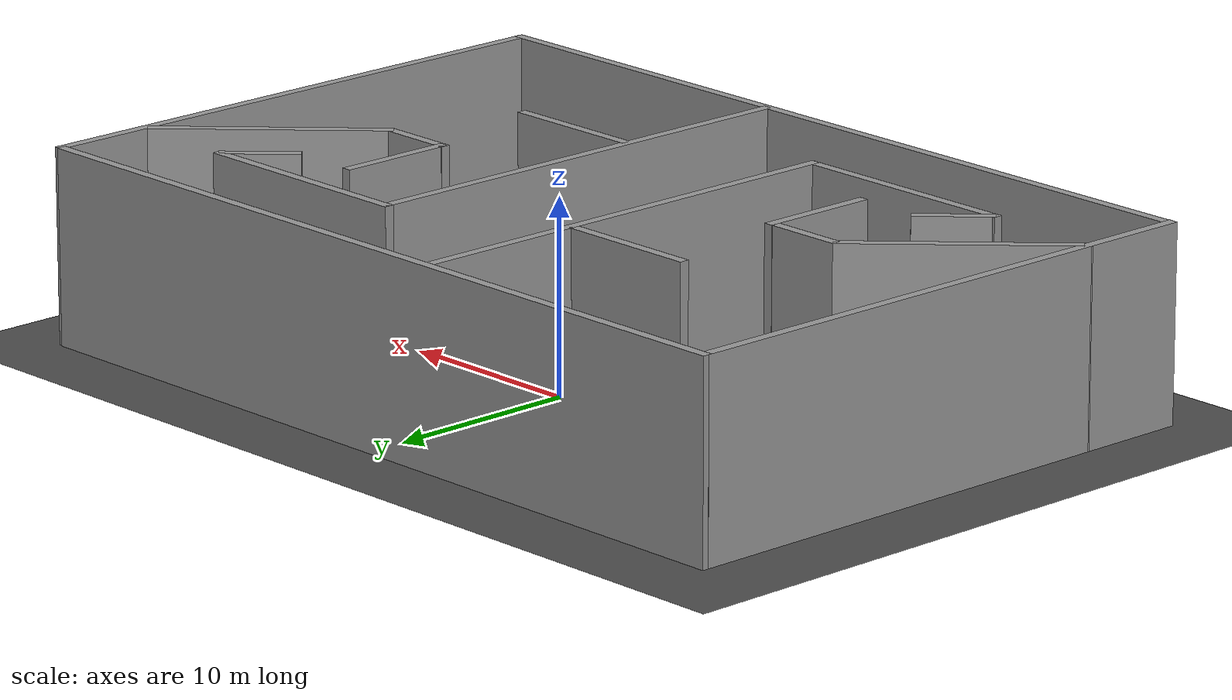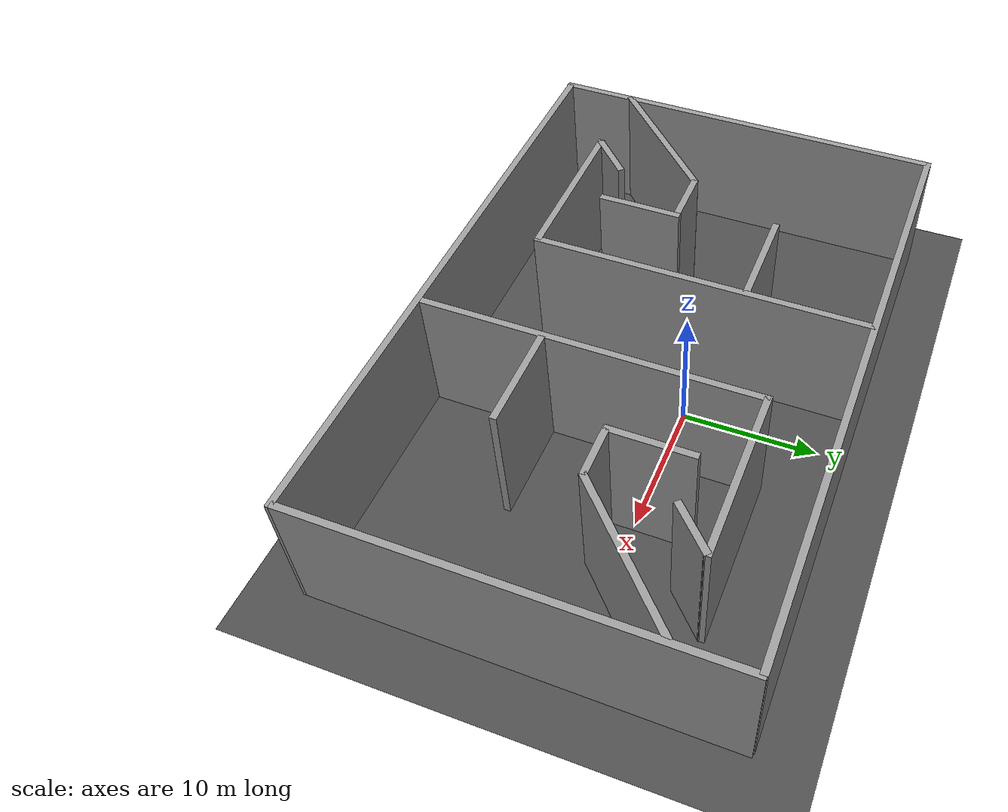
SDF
<sdf version="1.6">
 <world name="default">
  <light name="sun" type="directional">
   <pose>0 0 10 0 -0 0</pose>
   <diffuse>0.8 0.8 0.8 1</diffuse>
   <specular>0.2 0.2 0.2 1</specular>
   <attenuation>
    <range>1000</range>
    <constant>0.9</constant>
    <linear>0.01</linear>
    <quadratic>0.001</quadratic>
   </attenuation>
   <direction>-0.5 0.1 -0.9</direction>
  </light>
  <model name="ground_plane">
   <static>1</static>
   <link name="link">
    <collision name="collision">
     <geometry><plane><normal>0 0 1</normal><size>40000 40000</size></plane></geometry>
     <surface>
      <contact><collide_bitmask>65535</collide_bitmask></contact>
      <friction><ode><mu>100</mu><mu2>50</mu2></ode></friction>
     </surface>
    </collision>
    <visual name="visual">
     <cast_shadows>0</cast_shadows>
     <geometry><plane><normal>0 0 1</normal><size>50 50</size></plane></geometry>
     <material>
      <script><uri>file://media/materials/scripts/gazebo.material</uri><name>Gazebo/Road</name></script>
     </material>
    </visual>
   </link>
  </model>
  <gravity>0 0 -9.8</gravity>
  <magnetic_field>6e-06 2.3e-05 -4.2e-05</magnetic_field>
  <physics name="default_physics" default="0" type="ode">
   <max_step_size>0.001</max_step_size>
   <real_time_factor>1</real_time_factor>
   <real_time_update_rate>1000</real_time_update_rate>
  </physics>
  <scene><ambient>0.4 0.4 0.4 1</ambient><background>0.7 0.7 0.7 1</background><shadows>1</shadows></scene>
  <audio><device>default</device></audio>
  <spherical_coordinates>
   <surface_model>EARTH_WGS84</surface_model>
   <latitude_deg>0</latitude_deg>
   <longitude_deg>0</longitude_deg>
   <elevation>0</elevation>
   <heading_deg>0</heading_deg>
  </spherical_coordinates>
  <model name="wall2">
   <link name="link">
    <enable_wind>1</enable_wind>
    <inertial>
     <mass>1</mass>
     <inertia><ixx>1</ixx><ixy>0</ixy><ixz>0</ixz><iyy>1</iyy><iyz>0</iyz><izz>1</izz></inertia>
    </inertial>
    <visual name="visual">
     <cast_shadows>0</cast_shadows>
     <geometry><box><size>30 0.5 10</size></box></geometry>
     <material>
      <script>
       <uri>model://grey_wall/materials/scripts</uri>
       <uri>model://grey_wall/materials/textures</uri>
       <name>vrc/grey_wall</name>
      </script>
      <shader type="pixel"><normal_map>__default__</normal_map></shader>
      <ambient>1 1 1 1</ambient>
      <diffuse>1 1 1 1</diffuse>
      <specular>0 0 0 1</specular>
      <emissive>0 0 0 1</emissive>
     </material>
    </visual>
    <collision name="collision">
     <geometry><box><size>30 0.5 10</size></box></geometry>
     <surface>
      <friction>
       <ode><mu>1</mu><mu2>1</mu2><fdir1>0 0 0</fdir1><slip1>0</slip1><slip2>0</slip2></ode>
       <torsional>
        <coefficient>1</coefficient>
        <patch_radius>0</patch_radius>
        <surface_radius>0</surface_radius>
        <use_patch_radius>1</use_patch_radius>
        <ode><slip>0</slip></ode>
       </torsional>
      </friction>
      <bounce><restitution_coefficient>0</restitution_coefficient><threshold>1e+06</threshold></bounce>
      <contact>
       <collide_without_contact>0</collide_without_contact>
       <collide_without_contact_bitmask>1</collide_without_contact_bitmask>
       <collide_bitmask>1</collide_bitmask>
       <ode>
        <soft_cfm>0</soft_cfm>
        <soft_erp>0.2</soft_erp>
        <kp>1e+13</kp>
        <kd>1</kd>
        <max_vel>0.01</max_vel>
        <min_depth>0</min_depth>
       </ode>
       <bullet>
        <split_impulse>1</split_impulse>
        <split_impulse_penetration_threshold>-0.01</split_impulse_penetration_threshold>
        <soft_cfm>0</soft_cfm>
        <soft_erp>0.2</soft_erp>
        <kp>1e+13</kp>
        <kd>1</kd>
       </bullet>
      </contact>
     </surface>
    </collision>
   </link>
   <static>1</static>
   <pose>22.37 -2.93939 5 0 -0 1.56334</pose>
  </model>
  <model name="wall2_clone">
   <link name="link">
    <enable_wind>1</enable_wind>
    <inertial>
     <mass>1</mass>
     <inertia><ixx>1</ixx><ixy>0</ixy><ixz>0</ixz><iyy>1</iyy><iyz>0</iyz><izz>1</izz></inertia>
    </inertial>
    <visual name="visual">
     <cast_shadows>0</cast_shadows>
     <geometry><box><size>30 0.5 10</size></box></geometry>
     <material>
      <script>
       <uri>model://grey_wall/materials/scripts</uri>
       <uri>model://grey_wall/materials/textures</uri>
       <name>vrc/grey_wall</name>
      </script>
      <shader type="pixel"><normal_map>__default__</normal_map></shader>
      <ambient>1 1 1 1</ambient>
      <diffuse>1 1 1 1</diffuse>
      <specular>0 0 0 1</specular>
      <emissive>0 0 0 1</emissive>
     </material>
    </visual>
    <collision name="collision">
     <geometry><box><size>30 0.5 10</size></box></geometry>
     <surface>
      <friction>
       <ode><mu>1</mu><mu2>1</mu2><fdir1>0 0 0</fdir1><slip1>0</slip1><slip2>0</slip2></ode>
       <torsional>
        <coefficient>1</coefficient>
        <patch_radius>0</patch_radius>
        <surface_radius>0</surface_radius>
        <use_patch_radius>1</use_patch_radius>
        <ode><slip>0</slip></ode>
       </torsional>
      </friction>
      <bounce><restitution_coefficient>0</restitution_coefficient><threshold>1e+06</threshold></bounce>
      <contact>
       <collide_without_contact>0</collide_without_contact>
       <collide_without_contact_bitmask>1</collide_without_contact_bitmask>
       <collide_bitmask>1</collide_bitmask>
       <ode>
        <soft_cfm>0</soft_cfm>
        <soft_erp>0.2</soft_erp>
        <kp>1e+13</kp>
        <kd>1</kd>
        <max_vel>0.01</max_vel>
        <min_depth>0</min_depth>
       </ode>
       <bullet>
        <split_impulse>1</split_impulse>
        <split_impulse_penetration_threshold>-0.01</split_impulse_penetration_threshold>
        <soft_cfm>0</soft_cfm>
        <soft_erp>0.2</soft_erp>
        <kp>1e+13</kp>
        <kd>1</kd>
       </bullet>
      </contact>
     </surface>
    </collision>
   </link>
   <static>1</static>
   <pose>-22.37 -3.20511 5 0 -0 1.56334</pose>
  </model>
  <atmosphere type="adiabatic"/>
  <model name="wall1_clone">
   <link name="link">
    <enable_wind>1</enable_wind>
    <inertial>
     <mass>1</mass>
     <inertia><ixx>1</ixx><ixy>0</ixy><ixz>0</ixz><iyy>1</iyy><iyz>0</iyz><izz>1</izz></inertia>
    </inertial>
    <visual name="visual">
     <cast_shadows>0</cast_shadows>
     <geometry><box><size>45 0.5 10</size></box></geometry>
     <material>
      <script>
       <uri>model://grey_wall/materials/scripts</uri>
       <uri>model://grey_wall/materials/textures</uri>
       <name>vrc/grey_wall</name>
      </script>
      <shader type="pixel"><normal_map>__default__</normal_map></shader>
      <ambient>1 1 1 1</ambient>
      <diffuse>1 1 1 1</diffuse>
      <specular>0 0 0 1</specular>
      <emissive>0 0 0 1</emissive>
     </material>
    </visual>
    <collision name="collision">
     <geometry><box><size>35 0.5 10</size></box></geometry>
     <surface>
      <friction>
       <ode><mu>1</mu><mu2>1</mu2><fdir1>0 0 0</fdir1><slip1>0</slip1><slip2>0</slip2></ode>
       <torsional>
        <coefficient>1</coefficient>
        <patch_radius>0</patch_radius>
        <surface_radius>0</surface_radius>
        <use_patch_radius>1</use_patch_radius>
        <ode><slip>0</slip></ode>
       </torsional>
      </friction>
      <bounce><restitution_coefficient>0</restitution_coefficient><threshold>1e+06</threshold></bounce>
      <contact>
       <collide_without_contact>0</collide_without_contact>
       <collide_without_contact_bitmask>1</collide_without_contact_bitmask>
       <collide_bitmask>1</collide_bitmask>
       <ode>
        <soft_cfm>0</soft_cfm>
        <soft_erp>0.2</soft_erp>
        <kp>1e+13</kp>
        <kd>1</kd>
        <max_vel>0.01</max_vel>
        <min_depth>0</min_depth>
       </ode>
       <bullet>
        <split_impulse>1</split_impulse>
        <split_impulse_penetration_threshold>-0.01</split_impulse_penetration_threshold>
        <soft_cfm>0</soft_cfm>
        <soft_erp>0.2</soft_erp>
        <kp>1e+13</kp>
        <kd>1</kd>
       </bullet>
      </contact>
     </surface>
    </collision>
   </link>
   <static>1</static>
   <pose>0 11.8744 5 0 -0 0</pose>
  </model>
  <model name="wall1">
   <link name="link">
    <enable_wind>1</enable_wind>
    <inertial>
     <mass>1</mass>
     <inertia><ixx>1</ixx><ixy>0</ixy><ixz>0</ixz><iyy>1</iyy><iyz>0</iyz><izz>1</izz></inertia>
    </inertial>
    <visual name="visual">
     <cast_shadows>0</cast_shadows>
     <geometry><box><size>45 0.5 10</size></box></geometry>
     <material>
      <script>
       <uri>model://grey_wall/materials/scripts</uri>
       <uri>model://grey_wall/materials/textures</uri>
       <name>vrc/grey_wall</name>
      </script>
      <shader type="pixel"><normal_map>__default__</normal_map></shader>
      <ambient>1 1 1 1</ambient>
      <diffuse>1 1 1 1</diffuse>
      <specular>0 0 0 1</specular>
      <emissive>0 0 0 1</emissive>
     </material>
    </visual>
    <collision name="collision">
     <geometry><box><size>35 0.5 10</size></box></geometry>
     <surface>
      <friction>
       <ode><mu>1</mu><mu2>1</mu2><fdir1>0 0 0</fdir1><slip1>0</slip1><slip2>0</slip2></ode>
       <torsional>
        <coefficient>1</coefficient>
        <patch_radius>0</patch_radius>
        <surface_radius>0</surface_radius>
        <use_patch_radius>1</use_patch_radius>
        <ode><slip>0</slip></ode>
       </torsional>
      </friction>
      <bounce><restitution_coefficient>0</restitution_coefficient><threshold>1e+06</threshold></bounce>
      <contact>
       <collide_without_contact>0</collide_without_contact>
       <collide_without_contact_bitmask>1</collide_without_contact_bitmask>
       <collide_bitmask>1</collide_bitmask>
       <ode>
        <soft_cfm>0</soft_cfm>
        <soft_erp>0.2</soft_erp>
        <kp>1e+13</kp>
        <kd>1</kd>
        <max_vel>0.01</max_vel>
        <min_depth>0</min_depth>
       </ode>
       <bullet>
        <split_impulse>1</split_impulse>
        <split_impulse_penetration_threshold>-0.01</split_impulse_penetration_threshold>
        <soft_cfm>0</soft_cfm>
        <soft_erp>0.2</soft_erp>
        <kp>1e+13</kp>
        <kd>1</kd>
       </bullet>
      </contact>
     </surface>
    </collision>
   </link>
   <static>1</static>
   <pose>0 -17.9183 5 0 -0 0</pose>
  </model>
  <model name="wall11">
   <link name="link">
    <pose>-5.48843 0.359714 0 0 -0 0</pose>
    <enable_wind>1</enable_wind>
    <inertial>
     <mass>1</mass>
     <inertia><ixx>1</ixx><ixy>0</ixy><ixz>0</ixz><iyy>1</iyy><iyz>0</iyz><izz>1</izz></inertia>
    </inertial>
    <visual name="visual">
     <cast_shadows>0</cast_shadows>
     <geometry><box><size>25 0.5 10</size></box></geometry>
     <material>
      <script>
       <uri>model://grey_wall/materials/scripts</uri>
       <uri>model://grey_wall/materials/textures</uri>
       <name>vrc/grey_wall</name>
      </script>
      <shader type="pixel"><normal_map>__default__</normal_map></shader>
      <ambient>1 1 1 1</ambient>
      <diffuse>1 1 1 1</diffuse>
      <specular>0 0 0 1</specular>
      <emissive>0 0 0 1</emissive>
     </material>
    </visual>
    <collision name="collision">
     <geometry><box><size>30 0.5 10</size></box></geometry>
     <surface>
      <friction>
       <ode><mu>1</mu><mu2>1</mu2><fdir1>0 0 0</fdir1><slip1>0</slip1><slip2>0</slip2></ode>
       <torsional>
        <coefficient>1</coefficient>
        <patch_radius>0</patch_radius>
        <surface_radius>0</surface_radius>
        <use_patch_radius>1</use_patch_radius>
        <ode><slip>0</slip></ode>
       </torsional>
      </friction>
      <bounce><restitution_coefficient>0</restitution_coefficient><threshold>1e+06</threshold></bounce>
      <contact>
       <collide_without_contact>0</collide_without_contact>
       <collide_without_contact_bitmask>1</collide_without_contact_bitmask>
       <collide_bitmask>1</collide_bitmask>
       <ode>
        <soft_cfm>0</soft_cfm>
        <soft_erp>0.2</soft_erp>
        <kp>1e+13</kp>
        <kd>1</kd>
        <max_vel>0.01</max_vel>
        <min_depth>0</min_depth>
       </ode>
       <bullet>
        <split_impulse>1</split_impulse>
        <split_impulse_penetration_threshold>-0.01</split_impulse_penetration_threshold>
        <soft_cfm>0</soft_cfm>
        <soft_erp>0.2</soft_erp>
        <kp>1e+13</kp>
        <kd>1</kd>
       </bullet>
      </contact>
     </surface>
    </collision>
   </link>
   <static>1</static>
   <pose>4.85606 0.039422 5 0 -0 1.56334</pose>
  </model>
  <model name="wall11_clone">
   <link name="link">
    <pose>-5.48843 0.359714 0 0 -0 0</pose>
    <enable_wind>1</enable_wind>
    <inertial>
     <mass>1</mass>
     <inertia><ixx>1</ixx><ixy>0</ixy><ixz>0</ixz><iyy>1</iyy><iyz>0</iyz><izz>1</izz></inertia>
    </inertial>
    <visual name="visual">
     <cast_shadows>0</cast_shadows>
     <geometry><box><size>25 0.5 10</size></box></geometry>
     <material>
      <script>
       <uri>model://grey_wall/materials/scripts</uri>
       <uri>model://grey_wall/materials/textures</uri>
       <name>vrc/grey_wall</name>
      </script>
      <shader type="pixel"><normal_map>__default__</normal_map></shader>
      <ambient>1 1 1 1</ambient>
      <diffuse>1 1 1 1</diffuse>
      <specular>0 0 0 1</specular>
      <emissive>0 0 0 1</emissive>
     </material>
    </visual>
    <collision name="collision">
     <geometry><box><size>30 0.5 10</size></box></geometry>
     <surface>
      <friction>
       <ode><mu>1</mu><mu2>1</mu2><fdir1>0 0 0</fdir1><slip1>0</slip1><slip2>0</slip2></ode>
       <torsional>
        <coefficient>1</coefficient>
        <patch_radius>0</patch_radius>
        <surface_radius>0</surface_radius>
        <use_patch_radius>1</use_patch_radius>
        <ode><slip>0</slip></ode>
       </torsional>
      </friction>
      <bounce><restitution_coefficient>0</restitution_coefficient><threshold>1e+06</threshold></bounce>
      <contact>
       <collide_without_contact>0</collide_without_contact>
       <collide_without_contact_bitmask>1</collide_without_contact_bitmask>
       <collide_bitmask>1</collide_bitmask>
       <ode>
        <soft_cfm>0</soft_cfm>
        <soft_erp>0.2</soft_erp>
        <kp>1e+13</kp>
        <kd>1</kd>
        <max_vel>0.01</max_vel>
        <min_depth>0</min_depth>
       </ode>
       <bullet>
        <split_impulse>1</split_impulse>
        <split_impulse_penetration_threshold>-0.01</split_impulse_penetration_threshold>
        <soft_cfm>0</soft_cfm>
        <soft_erp>0.2</soft_erp>
        <kp>1e+13</kp>
        <kd>1</kd>
       </bullet>
      </contact>
     </surface>
    </collision>
   </link>
   <static>1</static>
   <pose>-3.57295 5.02352 5 0 -0 1.56334</pose>
  </model>
  <model name="wall21">
   <link name="link">
    <enable_wind>1</enable_wind>
    <inertial>
     <mass>1</mass>
     <inertia><ixx>1</ixx><ixy>0</ixy><ixz>0</ixz><iyy>1</iyy><iyz>0</iyz><izz>1</izz></inertia>
    </inertial>
    <visual name="visual">
     <cast_shadows>0</cast_shadows>
     <geometry><box><size>12.5 0.5 10</size></box></geometry>
     <material>
      <script>
       <uri>model://grey_wall/materials/scripts</uri>
       <uri>model://grey_wall/materials/textures</uri>
       <name>vrc/grey_wall</name>
      </script>
      <shader type="pixel"><normal_map>__default__</normal_map></shader>
      <ambient>1 1 1 1</ambient>
      <diffuse>1 1 1 1</diffuse>
      <specular>0 0 0 1</specular>
      <emissive>0 0 0 1</emissive>
     </material>
    </visual>
    <collision name="collision">
     <geometry><box><size>35 0.5 10</size></box></geometry>
     <surface>
      <friction>
       <ode><mu>1</mu><mu2>1</mu2><fdir1>0 0 0</fdir1><slip1>0</slip1><slip2>0</slip2></ode>
       <torsional>
        <coefficient>1</coefficient>
        <patch_radius>0</patch_radius>
        <surface_radius>0</surface_radius>
        <use_patch_radius>1</use_patch_radius>
        <ode><slip>0</slip></ode>
       </torsional>
      </friction>
      <bounce><restitution_coefficient>0</restitution_coefficient><threshold>1e+06</threshold></bounce>
      <contact>
       <collide_without_contact>0</collide_without_contact>
       <collide_without_contact_bitmask>1</collide_without_contact_bitmask>
       <collide_bitmask>1</collide_bitmask>
       <ode>
        <soft_cfm>0</soft_cfm>
        <soft_erp>0.2</soft_erp>
        <kp>1e+13</kp>
        <kd>1</kd>
        <max_vel>0.01</max_vel>
        <min_depth>0</min_depth>
       </ode>
       <bullet>
        <split_impulse>1</split_impulse>
        <split_impulse_penetration_threshold>-0.01</split_impulse_penetration_threshold>
        <soft_cfm>0</soft_cfm>
        <soft_erp>0.2</soft_erp>
        <kp>1e+13</kp>
        <kd>1</kd>
       </bullet>
      </contact>
     </surface>
    </collision>
   </link>
   <static>1</static>
   <pose>-10.1801 -12.7226 5 0 -0 0</pose>
  </model>
  <model name="wall21_clone">
   <link name="link">
    <enable_wind>1</enable_wind>
    <inertial>
     <mass>1</mass>
     <inertia><ixx>1</ixx><ixy>0</ixy><ixz>0</ixz><iyy>1</iyy><iyz>0</iyz><izz>1</izz></inertia>
    </inertial>
    <visual name="visual">
     <cast_shadows>0</cast_shadows>
     <geometry><box><size>12.5 0.5 10</size></box></geometry>
     <material>
      <script>
       <uri>model://grey_wall/materials/scripts</uri>
       <uri>model://grey_wall/materials/textures</uri>
       <name>vrc/grey_wall</name>
      </script>
      <shader type="pixel"><normal_map>__default__</normal_map></shader>
      <ambient>1 1 1 1</ambient>
      <diffuse>1 1 1 1</diffuse>
      <specular>0 0 0 1</specular>
      <emissive>0 0 0 1</emissive>
     </material>
    </visual>
    <collision name="collision">
     <geometry><box><size>35 0.5 10</size></box></geometry>
     <surface>
      <friction>
       <ode><mu>1</mu><mu2>1</mu2><fdir1>0 0 0</fdir1><slip1>0</slip1><slip2>0</slip2></ode>
       <torsional>
        <coefficient>1</coefficient>
        <patch_radius>0</patch_radius>
        <surface_radius>0</surface_radius>
        <use_patch_radius>1</use_patch_radius>
        <ode><slip>0</slip></ode>
       </torsional>
      </friction>
      <bounce><restitution_coefficient>0</restitution_coefficient><threshold>1e+06</threshold></bounce>
      <contact>
       <collide_without_contact>0</collide_without_contact>
       <collide_without_contact_bitmask>1</collide_without_contact_bitmask>
       <collide_bitmask>1</collide_bitmask>
       <ode>
        <soft_cfm>0</soft_cfm>
        <soft_erp>0.2</soft_erp>
        <kp>1e+13</kp>
        <kd>1</kd>
        <max_vel>0.01</max_vel>
        <min_depth>0</min_depth>
       </ode>
       <bullet>
        <split_impulse>1</split_impulse>
        <split_impulse_penetration_threshold>-0.01</split_impulse_penetration_threshold>
        <soft_cfm>0</soft_cfm>
        <soft_erp>0.2</soft_erp>
        <kp>1e+13</kp>
        <kd>1</kd>
       </bullet>
      </contact>
     </surface>
    </collision>
   </link>
   <static>1</static>
   <pose>10.526 6.91151 5 0 -0 0</pose>
  </model>
  <model name="wall22">
   <link name="link">
    <enable_wind>1</enable_wind>
    <inertial>
     <mass>1</mass>
     <inertia><ixx>1</ixx><ixy>0</ixy><ixz>0</ixz><iyy>1</iyy><iyz>0</iyz><izz>1</izz></inertia>
    </inertial>
    <visual name="visual">
     <cast_shadows>0</cast_shadows>
     <geometry><box><size>7.5 0.5 10</size></box></geometry>
     <material>
      <script>
       <uri>model://grey_wall/materials/scripts</uri>
       <uri>model://grey_wall/materials/textures</uri>
       <name>vrc/grey_wall</name>
      </script>
      <shader type="pixel"><normal_map>__default__</normal_map></shader>
      <ambient>1 1 1 1</ambient>
      <diffuse>1 1 1 1</diffuse>
      <specular>0 0 0 1</specular>
      <emissive>0 0 0 1</emissive>
     </material>
    </visual>
    <collision name="collision">
     <geometry><box><size>35 0.5 10</size></box></geometry>
     <surface>
      <friction>
       <ode><mu>1</mu><mu2>1</mu2><fdir1>0 0 0</fdir1><slip1>0</slip1><slip2>0</slip2></ode>
       <torsional>
        <coefficient>1</coefficient>
        <patch_radius>0</patch_radius>
        <surface_radius>0</surface_radius>
        <use_patch_radius>1</use_patch_radius>
        <ode><slip>0</slip></ode>
       </torsional>
      </friction>
      <bounce><restitution_coefficient>0</restitution_coefficient><threshold>1e+06</threshold></bounce>
      <contact>
       <collide_without_contact>0</collide_without_contact>
       <collide_without_contact_bitmask>1</collide_without_contact_bitmask>
       <collide_bitmask>1</collide_bitmask>
       <ode>
        <soft_cfm>0</soft_cfm>
        <soft_erp>0.2</soft_erp>
        <kp>1e+13</kp>
        <kd>1</kd>
        <max_vel>0.01</max_vel>
        <min_depth>0</min_depth>
       </ode>
       <bullet>
        <split_impulse>1</split_impulse>
        <split_impulse_penetration_threshold>-0.01</split_impulse_penetration_threshold>
        <soft_cfm>0</soft_cfm>
        <soft_erp>0.2</soft_erp>
        <kp>1e+13</kp>
        <kd>1</kd>
       </bullet>
      </contact>
     </surface>
    </collision>
   </link>
   <static>1</static>
   <pose>-7.81312 2.87181 5 0 -0 0</pose>
  </model>
  <model name="wall22_clone">
   <link name="link">
    <enable_wind>1</enable_wind>
    <inertial>
     <mass>1</mass>
     <inertia><ixx>1</ixx><ixy>0</ixy><ixz>0</ixz><iyy>1</iyy><iyz>0</iyz><izz>1</izz></inertia>
    </inertial>
    <visual name="visual">
     <cast_shadows>0</cast_shadows>
     <geometry><box><size>7.5 0.5 10</size></box></geometry>
     <material>
      <script>
       <uri>model://grey_wall/materials/scripts</uri>
       <uri>model://grey_wall/materials/textures</uri>
       <name>vrc/grey_wall</name>
      </script>
      <shader type="pixel"><normal_map>__default__</normal_map></shader>
      <ambient>1 1 1 1</ambient>
      <diffuse>1 1 1 1</diffuse>
      <specular>0 0 0 1</specular>
      <emissive>0 0 0 1</emissive>
     </material>
    </visual>
    <collision name="collision">
     <geometry><box><size>35 0.5 10</size></box></geometry>
     <surface>
      <friction>
       <ode><mu>1</mu><mu2>1</mu2><fdir1>0 0 0</fdir1><slip1>0</slip1><slip2>0</slip2></ode>
       <torsional>
        <coefficient>1</coefficient>
        <patch_radius>0</patch_radius>
        <surface_radius>0</surface_radius>
        <use_patch_radius>1</use_patch_radius>
        <ode><slip>0</slip></ode>
       </torsional>
      </friction>
      <bounce><restitution_coefficient>0</restitution_coefficient><threshold>1e+06</threshold></bounce>
      <contact>
       <collide_without_contact>0</collide_without_contact>
       <collide_without_contact_bitmask>1</collide_without_contact_bitmask>
       <collide_bitmask>1</collide_bitmask>
       <ode>
        <soft_cfm>0</soft_cfm>
        <soft_erp>0.2</soft_erp>
        <kp>1e+13</kp>
        <kd>1</kd>
        <max_vel>0.01</max_vel>
        <min_depth>0</min_depth>
       </ode>
       <bullet>
        <split_impulse>1</split_impulse>
        <split_impulse_penetration_threshold>-0.01</split_impulse_penetration_threshold>
        <soft_cfm>0</soft_cfm>
        <soft_erp>0.2</soft_erp>
        <kp>1e+13</kp>
        <kd>1</kd>
       </bullet>
      </contact>
     </surface>
    </collision>
   </link>
   <static>1</static>
   <pose>8.29684 -8.59347 5 0 -0 0</pose>
  </model>
  <model name="wall24">
   <link name="link">
    <pose>2.12616 1.98345 0 0 -0 0</pose>
    <enable_wind>1</enable_wind>
    <inertial>
     <mass>1</mass>
     <inertia><ixx>1</ixx><ixy>0</ixy><ixz>0</ixz><iyy>1</iyy><iyz>0</iyz><izz>1</izz></inertia>
    </inertial>
    <visual name="visual">
     <cast_shadows>0</cast_shadows>
     <geometry><box><size>4 0.5 10</size></box></geometry>
     <material>
      <script>
       <uri>model://grey_wall/materials/scripts</uri>
       <uri>model://grey_wall/materials/textures</uri>
       <name>vrc/grey_wall</name>
      </script>
      <shader type="pixel"><normal_map>__default__</normal_map></shader>
      <ambient>1 1 1 1</ambient>
      <diffuse>1 1 1 1</diffuse>
      <specular>0 0 0 1</specular>
      <emissive>0 0 0 1</emissive>
     </material>
     <pose>0 0 0 0 -0 0.78398</pose>
    </visual>
    <collision name="collision">
     <geometry><box><size>35 0.5 10</size></box></geometry>
     <surface>
      <friction>
       <ode><mu>1</mu><mu2>1</mu2><fdir1>0 0 0</fdir1><slip1>0</slip1><slip2>0</slip2></ode>
       <torsional>
        <coefficient>1</coefficient>
        <patch_radius>0</patch_radius>
        <surface_radius>0</surface_radius>
        <use_patch_radius>1</use_patch_radius>
        <ode><slip>0</slip></ode>
       </torsional>
      </friction>
      <bounce><restitution_coefficient>0</restitution_coefficient><threshold>1e+06</threshold></bounce>
      <contact>
       <collide_without_contact>0</collide_without_contact>
       <collide_without_contact_bitmask>1</collide_without_contact_bitmask>
       <collide_bitmask>1</collide_bitmask>
       <ode>
        <soft_cfm>0</soft_cfm>
        <soft_erp>0.2</soft_erp>
        <kp>1e+13</kp>
        <kd>1</kd>
        <max_vel>0.01</max_vel>
        <min_depth>0</min_depth>
       </ode>
       <bullet>
        <split_impulse>1</split_impulse>
        <split_impulse_penetration_threshold>-0.01</split_impulse_penetration_threshold>
        <soft_cfm>0</soft_cfm>
        <soft_erp>0.2</soft_erp>
        <kp>1e+13</kp>
        <kd>1</kd>
       </bullet>
      </contact>
     </surface>
    </collision>
   </link>
   <static>1</static>
   <pose>13.1078 3.52602 5 0 -0 0</pose>
  </model>
  <model name="wall24_clone">
   <link name="link">
    <pose>2.12616 1.98345 0 0 -0 0</pose>
    <enable_wind>1</enable_wind>
    <inertial>
     <mass>1</mass>
     <inertia><ixx>1</ixx><ixy>0</ixy><ixz>0</ixz><iyy>1</iyy><iyz>0</iyz><izz>1</izz></inertia>
    </inertial>
    <visual name="visual">
     <cast_shadows>0</cast_shadows>
     <geometry><box><size>4 0.5 10</size></box></geometry>
     <material>
      <script>
       <uri>model://grey_wall/materials/scripts</uri>
       <uri>model://grey_wall/materials/textures</uri>
       <name>vrc/grey_wall</name>
      </script>
      <shader type="pixel"><normal_map>__default__</normal_map></shader>
      <ambient>1 1 1 1</ambient>
      <diffuse>1 1 1 1</diffuse>
      <specular>0 0 0 1</specular>
      <emissive>0 0 0 1</emissive>
     </material>
     <pose>0 0 0 0 -0 0.78398</pose>
    </visual>
    <collision name="collision">
     <geometry><box><size>35 0.5 10</size></box></geometry>
     <surface>
      <friction>
       <ode><mu>1</mu><mu2>1</mu2><fdir1>0 0 0</fdir1><slip1>0</slip1><slip2>0</slip2></ode>
       <torsional>
        <coefficient>1</coefficient>
        <patch_radius>0</patch_radius>
        <surface_radius>0</surface_radius>
        <use_patch_radius>1</use_patch_radius>
        <ode><slip>0</slip></ode>
       </torsional>
      </friction>
      <bounce><restitution_coefficient>0</restitution_coefficient><threshold>1e+06</threshold></bounce>
      <contact>
       <collide_without_contact>0</collide_without_contact>
       <collide_without_contact_bitmask>1</collide_without_contact_bitmask>
       <collide_bitmask>1</collide_bitmask>
       <ode>
        <soft_cfm>0</soft_cfm>
        <soft_erp>0.2</soft_erp>
        <kp>1e+13</kp>
        <kd>1</kd>
        <max_vel>0.01</max_vel>
        <min_depth>0</min_depth>
       </ode>
       <bullet>
        <split_impulse>1</split_impulse>
        <split_impulse_penetration_threshold>-0.01</split_impulse_penetration_threshold>
        <soft_cfm>0</soft_cfm>
        <soft_erp>0.2</soft_erp>
        <kp>1e+13</kp>
        <kd>1</kd>
       </bullet>
      </contact>
     </surface>
    </collision>
   </link>
   <static>1</static>
   <pose>-16.9706 -13.3518 5 0 -0 0</pose>
  </model>
  <model name="wall25">
   <link name="link">
    <pose>-0.612114 -0.590174 0 0 -0 0</pose>
    <enable_wind>1</enable_wind>
    <inertial>
     <mass>1</mass>
     <inertia><ixx>1</ixx><ixy>0</ixy><ixz>0</ixz><iyy>1</iyy><iyz>0</iyz><izz>1</izz></inertia>
    </inertial>
    <visual name="visual">
     <cast_shadows>0</cast_shadows>
     <geometry><box><size>12 0.5 10</size></box></geometry>
     <material>
      <script>
       <uri>model://grey_wall/materials/scripts</uri>
       <uri>model://grey_wall/materials/textures</uri>
       <name>vrc/grey_wall</name>
      </script>
      <shader type="pixel"><normal_map>__default__</normal_map></shader>
      <ambient>1 1 1 1</ambient>
      <diffuse>1 1 1 1</diffuse>
      <specular>0 0 0 1</specular>
      <emissive>0 0 0 1</emissive>
     </material>
     <pose>0 0 0 0 -0 0.78398</pose>
    </visual>
    <collision name="collision">
     <geometry><box><size>35 0.5 10</size></box></geometry>
     <surface>
      <friction>
       <ode><mu>1</mu><mu2>1</mu2><fdir1>0 0 0</fdir1><slip1>0</slip1><slip2>0</slip2></ode>
       <torsional>
        <coefficient>1</coefficient>
        <patch_radius>0</patch_radius>
        <surface_radius>0</surface_radius>
        <use_patch_radius>1</use_patch_radius>
        <ode><slip>0</slip></ode>
       </torsional>
      </friction>
      <bounce><restitution_coefficient>0</restitution_coefficient><threshold>1e+06</threshold></bounce>
      <contact>
       <collide_without_contact>0</collide_without_contact>
       <collide_without_contact_bitmask>1</collide_without_contact_bitmask>
       <collide_bitmask>1</collide_bitmask>
       <ode>
        <soft_cfm>0</soft_cfm>
        <soft_erp>0.2</soft_erp>
        <kp>1e+13</kp>
        <kd>1</kd>
        <max_vel>0.01</max_vel>
        <min_depth>0</min_depth>
       </ode>
       <bullet>
        <split_impulse>1</split_impulse>
        <split_impulse_penetration_threshold>-0.01</split_impulse_penetration_threshold>
        <soft_cfm>0</soft_cfm>
        <soft_erp>0.2</soft_erp>
        <kp>1e+13</kp>
        <kd>1</kd>
       </bullet>
      </contact>
     </surface>
    </collision>
   </link>
   <static>1</static>
   <pose>18.7211 2.96378 5 0 -0 0</pose>
  </model>
  <model name="wall25_clone">
   <link name="link">
    <pose>-0.612114 -0.590174 0 0 -0 0</pose>
    <enable_wind>1</enable_wind>
    <inertial>
     <mass>1</mass>
     <inertia><ixx>1</ixx><ixy>0</ixy><ixz>0</ixz><iyy>1</iyy><iyz>0</iyz><izz>1</izz></inertia>
    </inertial>
    <visual name="visual">
     <cast_shadows>0</cast_shadows>
     <geometry><box><size>12 0.5 10</size></box></geometry>
     <material>
      <script>
       <uri>model://grey_wall/materials/scripts</uri>
       <uri>model://grey_wall/materials/textures</uri>
       <name>vrc/grey_wall</name>
      </script>
      <shader type="pixel"><normal_map>__default__</normal_map></shader>
      <ambient>1 1 1 1</ambient>
      <diffuse>1 1 1 1</diffuse>
      <specular>0 0 0 1</specular>
      <emissive>0 0 0 1</emissive>
     </material>
     <pose>0 0 0 0 -0 0.78398</pose>
    </visual>
    <collision name="collision">
     <geometry><box><size>35 0.5 10</size></box></geometry>
     <surface>
      <friction>
       <ode><mu>1</mu><mu2>1</mu2><fdir1>0 0 0</fdir1><slip1>0</slip1><slip2>0</slip2></ode>
       <torsional>
        <coefficient>1</coefficient>
        <patch_radius>0</patch_radius>
        <surface_radius>0</surface_radius>
        <use_patch_radius>1</use_patch_radius>
        <ode><slip>0</slip></ode>
       </torsional>
      </friction>
      <bounce><restitution_coefficient>0</restitution_coefficient><threshold>1e+06</threshold></bounce>
      <contact>
       <collide_without_contact>0</collide_without_contact>
       <collide_without_contact_bitmask>1</collide_without_contact_bitmask>
       <collide_bitmask>1</collide_bitmask>
       <ode>
        <soft_cfm>0</soft_cfm>
        <soft_erp>0.2</soft_erp>
        <kp>1e+13</kp>
        <kd>1</kd>
        <max_vel>0.01</max_vel>
        <min_depth>0</min_depth>
       </ode>
       <bullet>
        <split_impulse>1</split_impulse>
        <split_impulse_penetration_threshold>-0.01</split_impulse_penetration_threshold>
        <soft_cfm>0</soft_cfm>
        <soft_erp>0.2</soft_erp>
        <kp>1e+13</kp>
        <kd>1</kd>
       </bullet>
      </contact>
     </surface>
    </collision>
   </link>
   <static>1</static>
   <pose>-17.6881 -7.84832 5 0 -0 0</pose>
  </model>
  <model name="wall26">
   <link name="link">
    <enable_wind>1</enable_wind>
    <inertial>
     <mass>1</mass>
     <inertia><ixx>1</ixx><ixy>0</ixy><ixz>0</ixz><iyy>1</iyy><iyz>0</iyz><izz>1</izz></inertia>
    </inertial>
    <visual name="visual">
     <cast_shadows>0</cast_shadows>
     <geometry><box><size>4 0.5 10</size></box></geometry>
     <material>
      <script>
       <uri>model://grey_wall/materials/scripts</uri>
       <uri>model://grey_wall/materials/textures</uri>
       <name>vrc/grey_wall</name>
      </script>
      <shader type="pixel"><normal_map>__default__</normal_map></shader>
      <ambient>1 1 1 1</ambient>
      <diffuse>1 1 1 1</diffuse>
      <specular>0 0 0 1</specular>
      <emissive>0 0 0 1</emissive>
     </material>
    </visual>
    <collision name="collision">
     <geometry><box><size>35 0.5 10</size></box></geometry>
     <surface>
      <friction>
       <ode><mu>1</mu><mu2>1</mu2><fdir1>0 0 0</fdir1><slip1>0</slip1><slip2>0</slip2></ode>
       <torsional>
        <coefficient>1</coefficient>
        <patch_radius>0</patch_radius>
        <surface_radius>0</surface_radius>
        <use_patch_radius>1</use_patch_radius>
        <ode><slip>0</slip></ode>
       </torsional>
      </friction>
      <bounce><restitution_coefficient>0</restitution_coefficient><threshold>1e+06</threshold></bounce>
      <contact>
       <collide_without_contact>0</collide_without_contact>
       <collide_without_contact_bitmask>1</collide_without_contact_bitmask>
       <collide_bitmask>1</collide_bitmask>
       <ode>
        <soft_cfm>0</soft_cfm>
        <soft_erp>0.2</soft_erp>
        <kp>1e+13</kp>
        <kd>1</kd>
        <max_vel>0.01</max_vel>
        <min_depth>0</min_depth>
       </ode>
       <bullet>
        <split_impulse>1</split_impulse>
        <split_impulse_penetration_threshold>-0.01</split_impulse_penetration_threshold>
        <soft_cfm>0</soft_cfm>
        <soft_erp>0.2</soft_erp>
        <kp>1e+13</kp>
        <kd>1</kd>
       </bullet>
      </contact>
     </surface>
    </collision>
   </link>
   <static>1</static>
   <pose>-12.2288 -4.28132 5 0 -0 0</pose>
  </model>
  <model name="wall26_clone">
   <link name="link">
    <enable_wind>1</enable_wind>
    <inertial>
     <mass>1</mass>
     <inertia><ixx>1</ixx><ixy>0</ixy><ixz>0</ixz><iyy>1</iyy><iyz>0</iyz><izz>1</izz></inertia>
    </inertial>
    <visual name="visual">
     <cast_shadows>0</cast_shadows>
     <geometry><box><size>4 0.5 10</size></box></geometry>
     <material>
      <script>
       <uri>model://grey_wall/materials/scripts</uri>
       <uri>model://grey_wall/materials/textures</uri>
       <name>vrc/grey_wall</name>
      </script>
      <shader type="pixel"><normal_map>__default__</normal_map></shader>
      <ambient>1 1 1 1</ambient>
      <diffuse>1 1 1 1</diffuse>
      <specular>0 0 0 1</specular>
      <emissive>0 0 0 1</emissive>
     </material>
    </visual>
    <collision name="collision">
     <geometry><box><size>35 0.5 10</size></box></geometry>
     <surface>
      <friction>
       <ode><mu>1</mu><mu2>1</mu2><fdir1>0 0 0</fdir1><slip1>0</slip1><slip2>0</slip2></ode>
       <torsional>
        <coefficient>1</coefficient>
        <patch_radius>0</patch_radius>
        <surface_radius>0</surface_radius>
        <use_patch_radius>1</use_patch_radius>
        <ode><slip>0</slip></ode>
       </torsional>
      </friction>
      <bounce><restitution_coefficient>0</restitution_coefficient><threshold>1e+06</threshold></bounce>
      <contact>
       <collide_without_contact>0</collide_without_contact>
       <collide_without_contact_bitmask>1</collide_without_contact_bitmask>
       <collide_bitmask>1</collide_bitmask>
       <ode>
        <soft_cfm>0</soft_cfm>
        <soft_erp>0.2</soft_erp>
        <kp>1e+13</kp>
        <kd>1</kd>
        <max_vel>0.01</max_vel>
        <min_depth>0</min_depth>
       </ode>
       <bullet>
        <split_impulse>1</split_impulse>
        <split_impulse_penetration_threshold>-0.01</split_impulse_penetration_threshold>
        <soft_cfm>0</soft_cfm>
        <soft_erp>0.2</soft_erp>
        <kp>1e+13</kp>
        <kd>1</kd>
       </bullet>
      </contact>
     </surface>
    </collision>
   </link>
   <static>1</static>
   <pose>12.0051 -1.75291 5 0 -0 0</pose>
  </model>
  <model name="wall28">
   <link name="link">
    <pose>1.3114 0.148654 0 0 -0 0</pose>
    <enable_wind>1</enable_wind>
    <inertial>
     <mass>1</mass>
     <inertia><ixx>1</ixx><ixy>0</ixy><ixz>0</ixz><iyy>1</iyy><iyz>0</iyz><izz>1</izz></inertia>
    </inertial>
    <visual name="visual">
     <cast_shadows>0</cast_shadows>
     <geometry><box><size>6.25 0.5 10</size></box></geometry>
     <material>
      <script>
       <uri>model://grey_wall/materials/scripts</uri>
       <uri>model://grey_wall/materials/textures</uri>
       <name>vrc/grey_wall</name>
      </script>
      <shader type="pixel"><normal_map>__default__</normal_map></shader>
      <ambient>1 1 1 1</ambient>
      <diffuse>1 1 1 1</diffuse>
      <specular>0 0 0 1</specular>
      <emissive>0 0 0 1</emissive>
     </material>
    </visual>
    <collision name="collision">
     <geometry><box><size>30 0.5 10</size></box></geometry>
     <surface>
      <friction>
       <ode><mu>1</mu><mu2>1</mu2><fdir1>0 0 0</fdir1><slip1>0</slip1><slip2>0</slip2></ode>
       <torsional>
        <coefficient>1</coefficient>
        <patch_radius>0</patch_radius>
        <surface_radius>0</surface_radius>
        <use_patch_radius>1</use_patch_radius>
        <ode><slip>0</slip></ode>
       </torsional>
      </friction>
      <bounce><restitution_coefficient>0</restitution_coefficient><threshold>1e+06</threshold></bounce>
      <contact>
       <collide_without_contact>0</collide_without_contact>
       <collide_without_contact_bitmask>1</collide_without_contact_bitmask>
       <collide_bitmask>1</collide_bitmask>
       <ode>
        <soft_cfm>0</soft_cfm>
        <soft_erp>0.2</soft_erp>
        <kp>1e+13</kp>
        <kd>1</kd>
        <max_vel>0.01</max_vel>
        <min_depth>0</min_depth>
       </ode>
       <bullet>
        <split_impulse>1</split_impulse>
        <split_impulse_penetration_threshold>-0.01</split_impulse_penetration_threshold>
        <soft_cfm>0</soft_cfm>
        <soft_erp>0.2</soft_erp>
        <kp>1e+13</kp>
        <kd>1</kd>
       </bullet>
      </contact>
     </surface>
    </collision>
   </link>
   <static>1</static>
   <pose>10.4393 -0.121946 5 0 -0 1.56334</pose>
  </model>
  <model name="wall28_clone">
   <link name="link">
    <pose>1.3114 0.148654 0 0 -0 0</pose>
    <enable_wind>1</enable_wind>
    <inertial>
     <mass>1</mass>
     <inertia><ixx>1</ixx><ixy>0</ixy><ixz>0</ixz><iyy>1</iyy><iyz>0</iyz><izz>1</izz></inertia>
    </inertial>
    <visual name="visual">
     <cast_shadows>0</cast_shadows>
     <geometry><box><size>6.25 0.5 10</size></box></geometry>
     <material>
      <script>
       <uri>model://grey_wall/materials/scripts</uri>
       <uri>model://grey_wall/materials/textures</uri>
       <name>vrc/grey_wall</name>
      </script>
      <shader type="pixel"><normal_map>__default__</normal_map></shader>
      <ambient>1 1 1 1</ambient>
      <diffuse>1 1 1 1</diffuse>
      <specular>0 0 0 1</specular>
      <emissive>0 0 0 1</emissive>
     </material>
    </visual>
    <collision name="collision">
     <geometry><box><size>30 0.5 10</size></box></geometry>
     <surface>
      <friction>
       <ode><mu>1</mu><mu2>1</mu2><fdir1>0 0 0</fdir1><slip1>0</slip1><slip2>0</slip2></ode>
       <torsional>
        <coefficient>1</coefficient>
        <patch_radius>0</patch_radius>
        <surface_radius>0</surface_radius>
        <use_patch_radius>1</use_patch_radius>
        <ode><slip>0</slip></ode>
       </torsional>
      </friction>
      <bounce><restitution_coefficient>0</restitution_coefficient><threshold>1e+06</threshold></bounce>
      <contact>
       <collide_without_contact>0</collide_without_contact>
       <collide_without_contact_bitmask>1</collide_without_contact_bitmask>
       <collide_bitmask>1</collide_bitmask>
       <ode>
        <soft_cfm>0</soft_cfm>
        <soft_erp>0.2</soft_erp>
        <kp>1e+13</kp>
        <kd>1</kd>
        <max_vel>0.01</max_vel>
        <min_depth>0</min_depth>
       </ode>
       <bullet>
        <split_impulse>1</split_impulse>
        <split_impulse_penetration_threshold>-0.01</split_impulse_penetration_threshold>
        <soft_cfm>0</soft_cfm>
        <soft_erp>0.2</soft_erp>
        <kp>1e+13</kp>
        <kd>1</kd>
       </bullet>
      </contact>
     </surface>
    </collision>
   </link>
   <static>1</static>
   <pose>-9.85765 -8.4551 5 0 -0 1.56334</pose>
  </model>
 </world>
</sdf>
